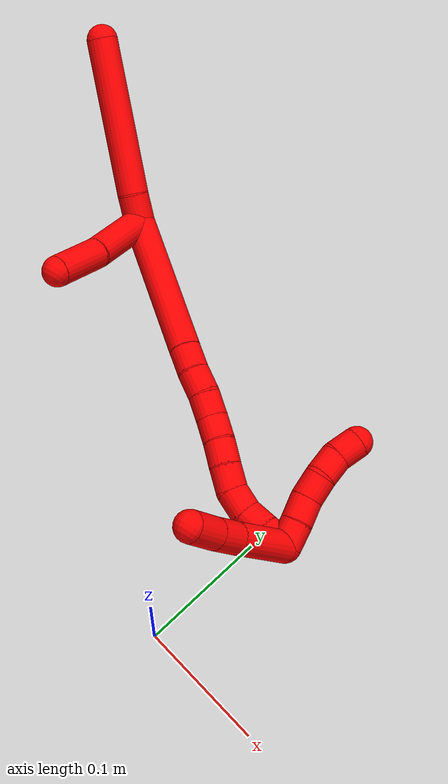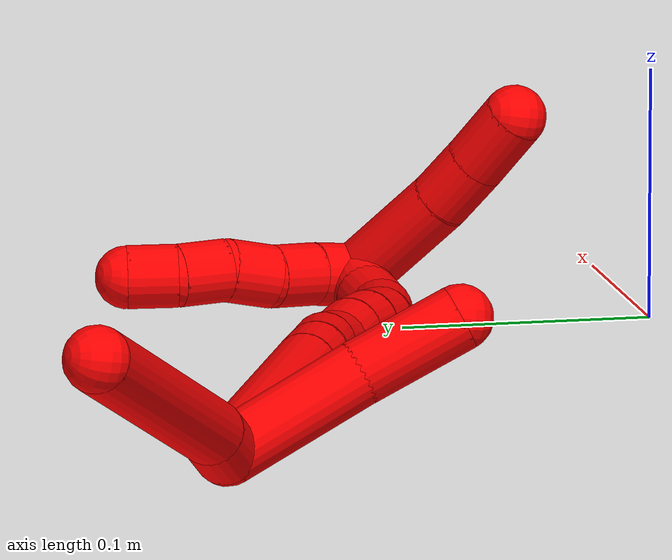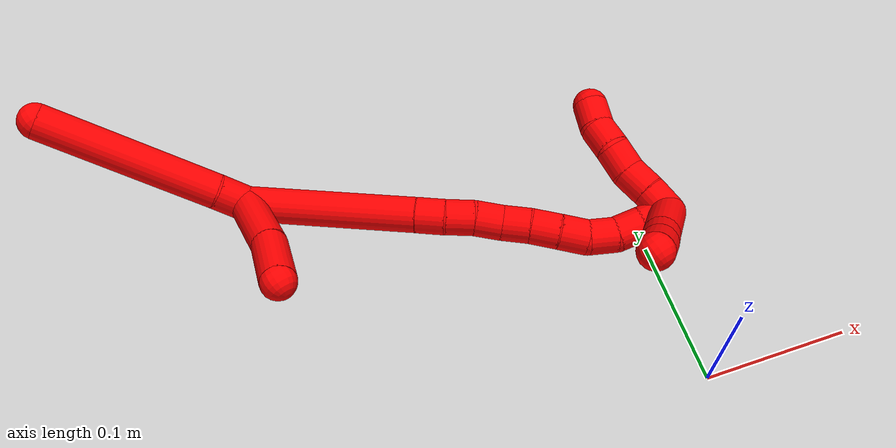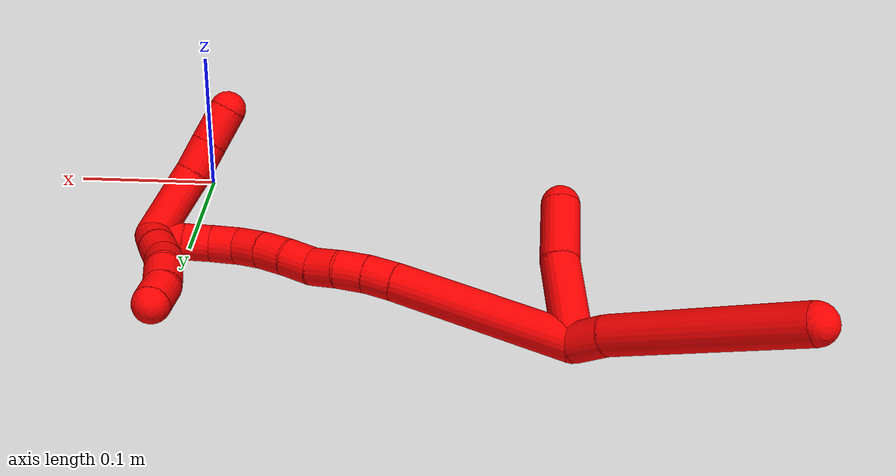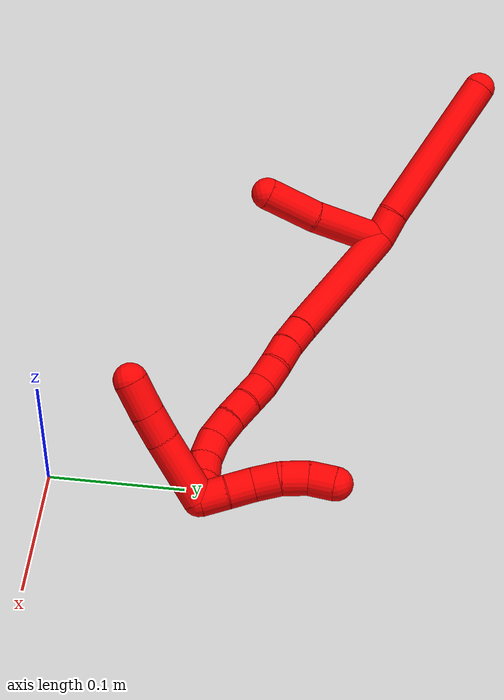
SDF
<sdf version="1.7">
 <world name="default">
  <model name="2">
   <static>0</static>
   <link name="2">
    <collision name="collision-cylinder-e_1_2_8">
     <pose>-0.007797 -0.003932 0.007764 0.468799 -0.730536 -0.182135</pose>
     <geometry><cylinder><radius>0.0125</radius><length>0.023371</length></cylinder></geometry>
     <surface>
      <friction><ode><mu>1.16</mu><mu2>1.16</mu2><slip1>0</slip1><slip2>0</slip2></ode></friction>
      <contact><ode><kp>1e+06</kp><kd>1</kd><max_vel>0</max_vel><min_depth>0.001</min_depth></ode></contact>
     </surface>
    </collision>
    <visual name="visual-cylinder-e_1_2_8">
     <pose>-0.007797 -0.003932 0.007764 0.468799 -0.730536 -0.182135</pose>
     <geometry><cylinder><radius>0.0125</radius><length>0.023371</length></cylinder></geometry>
     <material><ambient>1 0 0 1</ambient></material>
    </visual>
    <collision name="collision-cylinder-e_2_8_6">
     <pose>-0.057533 -0.021235 0.061039 0.285748 -0.723996 -0.108843</pose>
     <geometry><cylinder><radius>0.0125</radius><length>0.126629</length></cylinder></geometry>
     <surface>
      <friction><ode><mu>1.16</mu><mu2>1.16</mu2><slip1>0</slip1><slip2>0</slip2></ode></friction>
      <contact><ode><kp>1e+06</kp><kd>1</kd><max_vel>0</max_vel><min_depth>0.001</min_depth></ode></contact>
     </surface>
    </collision>
    <visual name="visual-cylinder-e_2_8_6">
     <pose>-0.057533 -0.021235 0.061039 0.285748 -0.723996 -0.108843</pose>
     <geometry><cylinder><radius>0.0125</radius><length>0.126629</length></cylinder></geometry>
     <material><ambient>1 0 0 1</ambient></material>
    </visual>
    <collision name="collision-cylinder-e_1_2_9">
     <pose>-0.005458 -0.016718 -0.022731 2.50747 -0.191059 -0.568244</pose>
     <geometry><cylinder><radius>0.0125</radius><length>0.057479</length></cylinder></geometry>
     <surface>
      <friction><ode><mu>1.16</mu><mu2>1.16</mu2><slip1>0</slip1><slip2>0</slip2></ode></friction>
      <contact><ode><kp>1e+06</kp><kd>1</kd><max_vel>0</max_vel><min_depth>0.001</min_depth></ode></contact>
     </surface>
    </collision>
    <visual name="visual-cylinder-e_1_2_9">
     <pose>-0.005458 -0.016718 -0.022731 2.50747 -0.191059 -0.568244</pose>
     <geometry><cylinder><radius>0.0125</radius><length>0.057479</length></cylinder></geometry>
     <material><ambient>1 0 0 1</ambient></material>
    </visual>
    <collision name="collision-cylinder-e_2_9_5">
     <pose>-0.017991 -0.045475 -0.061493 2.49741 -0.339293 -0.948457</pose>
     <geometry><cylinder><radius>0.0125</radius><length>0.042521</length></cylinder></geometry>
     <surface>
      <friction><ode><mu>1.16</mu><mu2>1.16</mu2><slip1>0</slip1><slip2>0</slip2></ode></friction>
      <contact><ode><kp>1e+06</kp><kd>1</kd><max_vel>0</max_vel><min_depth>0.001</min_depth></ode></contact>
     </surface>
    </collision>
    <visual name="visual-cylinder-e_2_9_5">
     <pose>-0.017991 -0.045475 -0.061493 2.49741 -0.339293 -0.948457</pose>
     <geometry><cylinder><radius>0.0125</radius><length>0.042521</length></cylinder></geometry>
     <material><ambient>1 0 0 1</ambient></material>
    </visual>
    <collision name="collision-cylinder-e_1_2_10">
     <pose>0.044147 -0.015336 -0.037471 2.7531 0.828598 2.30029</pose>
     <geometry><cylinder><radius>0.0125</radius><length>0.119803</length></cylinder></geometry>
     <surface>
      <friction><ode><mu>1.16</mu><mu2>1.16</mu2><slip1>0</slip1><slip2>0</slip2></ode></friction>
      <contact><ode><kp>1e+06</kp><kd>1</kd><max_vel>0</max_vel><min_depth>0.001</min_depth></ode></contact>
     </surface>
    </collision>
    <visual name="visual-cylinder-e_1_2_10">
     <pose>0.044147 -0.015336 -0.037471 2.7531 0.828598 2.30029</pose>
     <geometry><cylinder><radius>0.0125</radius><length>0.119803</length></cylinder></geometry>
     <material><ambient>1 0 0 1</ambient></material>
    </visual>
    <collision name="collision-cylinder-e_2_10_11">
     <pose>0.095876 -0.032816 -0.081218 2.8125 0.852162 2.44017</pose>
     <geometry><cylinder><radius>0.0125</radius><length>0.020148</length></cylinder></geometry>
     <surface>
      <friction><ode><mu>1.16</mu><mu2>1.16</mu2><slip1>0</slip1><slip2>0</slip2></ode></friction>
      <contact><ode><kp>1e+06</kp><kd>1</kd><max_vel>0</max_vel><min_depth>0.001</min_depth></ode></contact>
     </surface>
    </collision>
    <visual name="visual-cylinder-e_2_10_11">
     <pose>0.095876 -0.032816 -0.081218 2.8125 0.852162 2.44017</pose>
     <geometry><cylinder><radius>0.0125</radius><length>0.020148</length></cylinder></geometry>
     <material><ambient>1 0 0 1</ambient></material>
    </visual>
    <collision name="collision-cylinder-e_3_11_12">
     <pose>0.111609 -0.036406 -0.093144 2.89096 0.94975 2.66099</pose>
     <geometry><cylinder><radius>0.0125</radius><length>0.020045</length></cylinder></geometry>
     <surface>
      <friction><ode><mu>1.16</mu><mu2>1.16</mu2><slip1>0</slip1><slip2>0</slip2></ode></friction>
      <contact><ode><kp>1e+06</kp><kd>1</kd><max_vel>0</max_vel><min_depth>0.001</min_depth></ode></contact>
     </surface>
    </collision>
    <visual name="visual-cylinder-e_3_11_12">
     <pose>0.111609 -0.036406 -0.093144 2.89096 0.94975 2.66099</pose>
     <geometry><cylinder><radius>0.0125</radius><length>0.020045</length></cylinder></geometry>
     <material><ambient>1 0 0 1</ambient></material>
    </visual>
    <collision name="collision-cylinder-e_4_12_13">
     <pose>0.127353 -0.038092 -0.1053 3.10485 0.862011 3.06173</pose>
     <geometry><cylinder><radius>0.0125</radius><length>0.020003</length></cylinder></geometry>
     <surface>
      <friction><ode><mu>1.16</mu><mu2>1.16</mu2><slip1>0</slip1><slip2>0</slip2></ode></friction>
      <contact><ode><kp>1e+06</kp><kd>1</kd><max_vel>0</max_vel><min_depth>0.001</min_depth></ode></contact>
     </surface>
    </collision>
    <visual name="visual-cylinder-e_4_12_13">
     <pose>0.127353 -0.038092 -0.1053 3.10485 0.862011 3.06173</pose>
     <geometry><cylinder><radius>0.0125</radius><length>0.020003</length></cylinder></geometry>
     <material><ambient>1 0 0 1</ambient></material>
    </visual>
    <collision name="collision-cylinder-e_5_13_14">
     <pose>0.142057 -0.040776 -0.118397 2.78633 0.791174 2.32957</pose>
     <geometry><cylinder><radius>0.0125</radius><length>0.020001</length></cylinder></geometry>
     <surface>
      <friction><ode><mu>1.16</mu><mu2>1.16</mu2><slip1>0</slip1><slip2>0</slip2></ode></friction>
      <contact><ode><kp>1e+06</kp><kd>1</kd><max_vel>0</max_vel><min_depth>0.001</min_depth></ode></contact>
     </surface>
    </collision>
    <visual name="visual-cylinder-e_5_13_14">
     <pose>0.142057 -0.040776 -0.118397 2.78633 0.791174 2.32957</pose>
     <geometry><cylinder><radius>0.0125</radius><length>0.020001</length></cylinder></geometry>
     <material><ambient>1 0 0 1</ambient></material>
    </visual>
    <collision name="collision-cylinder-e_6_14_15">
     <pose>0.156084 -0.044707 -0.132058 2.93458 0.763501 2.63517</pose>
     <geometry><cylinder><radius>0.0125</radius><length>0.020001</length></cylinder></geometry>
     <surface>
      <friction><ode><mu>1.16</mu><mu2>1.16</mu2><slip1>0</slip1><slip2>0</slip2></ode></friction>
      <contact><ode><kp>1e+06</kp><kd>1</kd><max_vel>0</max_vel><min_depth>0.001</min_depth></ode></contact>
     </surface>
    </collision>
    <visual name="visual-cylinder-e_6_14_15">
     <pose>0.156084 -0.044707 -0.132058 2.93458 0.763501 2.63517</pose>
     <geometry><cylinder><radius>0.0125</radius><length>0.020001</length></cylinder></geometry>
     <material><ambient>1 0 0 1</ambient></material>
    </visual>
    <collision name="collision-cylinder-e_7_15_16">
     <pose>0.170193 -0.046844 -0.146044 3.04748 0.802901 2.92064</pose>
     <geometry><cylinder><radius>0.0125</radius><length>0.02</length></cylinder></geometry>
     <surface>
      <friction><ode><mu>1.16</mu><mu2>1.16</mu2><slip1>0</slip1><slip2>0</slip2></ode></friction>
      <contact><ode><kp>1e+06</kp><kd>1</kd><max_vel>0</max_vel><min_depth>0.001</min_depth></ode></contact>
     </surface>
    </collision>
    <visual name="visual-cylinder-e_7_15_16">
     <pose>0.170193 -0.046844 -0.146044 3.04748 0.802901 2.92064</pose>
     <geometry><cylinder><radius>0.0125</radius><length>0.02</length></cylinder></geometry>
     <material><ambient>1 0 0 1</ambient></material>
    </visual>
    <collision name="collision-cylinder-e_8_16_17">
     <pose>0.186227 -0.048832 -0.157438 2.85196 1.08456 2.66664</pose>
     <geometry><cylinder><radius>0.0125</radius><length>0.02</length></cylinder></geometry>
     <surface>
      <friction><ode><mu>1.16</mu><mu2>1.16</mu2><slip1>0</slip1><slip2>0</slip2></ode></friction>
      <contact><ode><kp>1e+06</kp><kd>1</kd><max_vel>0</max_vel><min_depth>0.001</min_depth></ode></contact>
     </surface>
    </collision>
    <visual name="visual-cylinder-e_8_16_17">
     <pose>0.186227 -0.048832 -0.157438 2.85196 1.08456 2.66664</pose>
     <geometry><cylinder><radius>0.0125</radius><length>0.02</length></cylinder></geometry>
     <material><ambient>1 0 0 1</ambient></material>
    </visual>
    <collision name="collision-cylinder-e_9_17_18">
     <pose>0.204636 -0.052418 -0.163758 2.25651 1.27559 2.00379</pose>
     <geometry><cylinder><radius>0.0125</radius><length>0.02</length></cylinder></geometry>
     <surface>
      <friction><ode><mu>1.16</mu><mu2>1.16</mu2><slip1>0</slip1><slip2>0</slip2></ode></friction>
      <contact><ode><kp>1e+06</kp><kd>1</kd><max_vel>0</max_vel><min_depth>0.001</min_depth></ode></contact>
     </surface>
    </collision>
    <visual name="visual-cylinder-e_9_17_18">
     <pose>0.204636 -0.052418 -0.163758 2.25651 1.27559 2.00379</pose>
     <geometry><cylinder><radius>0.0125</radius><length>0.02</length></cylinder></geometry>
     <material><ambient>1 0 0 1</ambient></material>
    </visual>
    <collision name="collision-cylinder-e_10_18_1">
     <pose>0.223373 -0.058212 -0.167438 2.04928 1.16028 1.64603</pose>
     <geometry><cylinder><radius>0.0125</radius><length>0.02</length></cylinder></geometry>
     <surface>
      <friction><ode><mu>1.16</mu><mu2>1.16</mu2><slip1>0</slip1><slip2>0</slip2></ode></friction>
      <contact><ode><kp>1e+06</kp><kd>1</kd><max_vel>0</max_vel><min_depth>0.001</min_depth></ode></contact>
     </surface>
    </collision>
    <visual name="visual-cylinder-e_10_18_1">
     <pose>0.223373 -0.058212 -0.167438 2.04928 1.16028 1.64603</pose>
     <geometry><cylinder><radius>0.0125</radius><length>0.02</length></cylinder></geometry>
     <material><ambient>1 0 0 1</ambient></material>
    </visual>
    <collision name="collision-cylinder-e_1_1_19">
     <pose>0.215065 -0.07832 -0.17704 2.00911 -0.762536 -1.12529</pose>
     <geometry><cylinder><radius>0.0125</radius><length>0.050601</length></cylinder></geometry>
     <surface>
      <friction><ode><mu>1.16</mu><mu2>1.16</mu2><slip1>0</slip1><slip2>0</slip2></ode></friction>
      <contact><ode><kp>1e+06</kp><kd>1</kd><max_vel>0</max_vel><min_depth>0.001</min_depth></ode></contact>
     </surface>
    </collision>
    <visual name="visual-cylinder-e_1_1_19">
     <pose>0.215065 -0.07832 -0.17704 2.00911 -0.762536 -1.12529</pose>
     <geometry><cylinder><radius>0.0125</radius><length>0.050601</length></cylinder></geometry>
     <material><ambient>1 0 0 1</ambient></material>
    </visual>
    <collision name="collision-cylinder-e_2_19_20">
     <pose>0.1903 -0.103089 -0.187822 1.92322 -0.695063 -0.957741</pose>
     <geometry><cylinder><radius>0.0125</radius><length>0.022763</length></cylinder></geometry>
     <surface>
      <friction><ode><mu>1.16</mu><mu2>1.16</mu2><slip1>0</slip1><slip2>0</slip2></ode></friction>
      <contact><ode><kp>1e+06</kp><kd>1</kd><max_vel>0</max_vel><min_depth>0.001</min_depth></ode></contact>
     </surface>
    </collision>
    <visual name="visual-cylinder-e_2_19_20">
     <pose>0.1903 -0.103089 -0.187822 1.92322 -0.695063 -0.957741</pose>
     <geometry><cylinder><radius>0.0125</radius><length>0.022763</length></cylinder></geometry>
     <material><ambient>1 0 0 1</ambient></material>
    </visual>
    <collision name="collision-cylinder-e_3_20_4">
     <pose>0.174362 -0.120992 -0.193753 1.86271 -0.70682 -0.920958</pose>
     <geometry><cylinder><radius>0.0125</radius><length>0.026636</length></cylinder></geometry>
     <surface>
      <friction><ode><mu>1.16</mu><mu2>1.16</mu2><slip1>0</slip1><slip2>0</slip2></ode></friction>
      <contact><ode><kp>1e+06</kp><kd>1</kd><max_vel>0</max_vel><min_depth>0.001</min_depth></ode></contact>
     </surface>
    </collision>
    <visual name="visual-cylinder-e_3_20_4">
     <pose>0.174362 -0.120992 -0.193753 1.86271 -0.70682 -0.920958</pose>
     <geometry><cylinder><radius>0.0125</radius><length>0.026636</length></cylinder></geometry>
     <material><ambient>1 0 0 1</ambient></material>
    </visual>
    <collision name="collision-cylinder-e_1_1_21">
     <pose>0.231707 -0.061285 -0.159322 -0.047192 -0.083606 0.001974</pose>
     <geometry><cylinder><radius>0.0125</radius><length>0.02</length></cylinder></geometry>
     <surface>
      <friction><ode><mu>1.16</mu><mu2>1.16</mu2><slip1>0</slip1><slip2>0</slip2></ode></friction>
      <contact><ode><kp>1e+06</kp><kd>1</kd><max_vel>0</max_vel><min_depth>0.001</min_depth></ode></contact>
     </surface>
    </collision>
    <visual name="visual-cylinder-e_1_1_21">
     <pose>0.231707 -0.061285 -0.159322 -0.047192 -0.083606 0.001974</pose>
     <geometry><cylinder><radius>0.0125</radius><length>0.02</length></cylinder></geometry>
     <material><ambient>1 0 0 1</ambient></material>
    </visual>
    <collision name="collision-cylinder-e_2_21_22">
     <pose>0.229574 -0.05963 -0.139523 -0.119781 -0.130092 0.007812</pose>
     <geometry><cylinder><radius>0.0125</radius><length>0.02</length></cylinder></geometry>
     <surface>
      <friction><ode><mu>1.16</mu><mu2>1.16</mu2><slip1>0</slip1><slip2>0</slip2></ode></friction>
      <contact><ode><kp>1e+06</kp><kd>1</kd><max_vel>0</max_vel><min_depth>0.001</min_depth></ode></contact>
     </surface>
    </collision>
    <visual name="visual-cylinder-e_2_21_22">
     <pose>0.229574 -0.05963 -0.139523 -0.119781 -0.130092 0.007812</pose>
     <geometry><cylinder><radius>0.0125</radius><length>0.02</length></cylinder></geometry>
     <material><ambient>1 0 0 1</ambient></material>
    </visual>
    <collision name="collision-cylinder-e_3_22_23">
     <pose>0.228615 -0.058955 -0.119698 0.051078 0.033771 0.000863</pose>
     <geometry><cylinder><radius>0.0125</radius><length>0.02</length></cylinder></geometry>
     <surface>
      <friction><ode><mu>1.16</mu><mu2>1.16</mu2><slip1>0</slip1><slip2>0</slip2></ode></friction>
      <contact><ode><kp>1e+06</kp><kd>1</kd><max_vel>0</max_vel><min_depth>0.001</min_depth></ode></contact>
     </surface>
    </collision>
    <visual name="visual-cylinder-e_3_22_23">
     <pose>0.228615 -0.058955 -0.119698 0.051078 0.033771 0.000863</pose>
     <geometry><cylinder><radius>0.0125</radius><length>0.02</length></cylinder></geometry>
     <material><ambient>1 0 0 1</ambient></material>
    </visual>
    <collision name="collision-cylinder-e_4_23_24">
     <pose>0.23019 -0.057551 -0.09998 -0.194207 0.124056 -0.0121</pose>
     <geometry><cylinder><radius>0.0125</radius><length>0.02</length></cylinder></geometry>
     <surface>
      <friction><ode><mu>1.16</mu><mu2>1.16</mu2><slip1>0</slip1><slip2>0</slip2></ode></friction>
      <contact><ode><kp>1e+06</kp><kd>1</kd><max_vel>0</max_vel><min_depth>0.001</min_depth></ode></contact>
     </surface>
    </collision>
    <visual name="visual-cylinder-e_4_23_24">
     <pose>0.23019 -0.057551 -0.09998 -0.194207 0.124056 -0.0121</pose>
     <geometry><cylinder><radius>0.0125</radius><length>0.02</length></cylinder></geometry>
     <material><ambient>1 0 0 1</ambient></material>
    </visual>
    <collision name="collision-cylinder-e_5_24_3">
     <pose>0.235462 -0.054381 -0.08118 -0.13756 0.415356 -0.02903</pose>
     <geometry><cylinder><radius>0.0125</radius><length>0.02</length></cylinder></geometry>
     <surface>
      <friction><ode><mu>1.16</mu><mu2>1.16</mu2><slip1>0</slip1><slip2>0</slip2></ode></friction>
      <contact><ode><kp>1e+06</kp><kd>1</kd><max_vel>0</max_vel><min_depth>0.001</min_depth></ode></contact>
     </surface>
    </collision>
    <visual name="visual-cylinder-e_5_24_3">
     <pose>0.235462 -0.054381 -0.08118 -0.13756 0.415356 -0.02903</pose>
     <geometry><cylinder><radius>0.0125</radius><length>0.02</length></cylinder></geometry>
     <material><ambient>1 0 0 1</ambient></material>
    </visual>
    <collision name="collision-sphere-3">
     <pose>0.239497 -0.053126 -0.072117 0 -0 0</pose>
     <geometry><sphere><radius>0.0125</radius></sphere></geometry>
     <surface>
      <friction><ode><mu>1.16</mu><mu2>1.16</mu2><slip1>0</slip1><slip2>0</slip2></ode></friction>
      <contact><ode><kp>1e+06</kp><kd>1</kd><max_vel>0</max_vel><min_depth>0.001</min_depth></ode></contact>
     </surface>
    </collision>
    <visual name="visual-sphere-3">
     <pose>0.239497 -0.053126 -0.072117 0 -0 0</pose>
     <geometry><sphere><radius>0.0125</radius></sphere></geometry>
     <material><ambient>1 0 0 1</ambient></material>
    </visual>
    <collision name="collision-sphere-24">
     <pose>0.231427 -0.055636 -0.090243 0 -0 0</pose>
     <geometry><sphere><radius>0.0125</radius></sphere></geometry>
     <surface>
      <friction><ode><mu>1.16</mu><mu2>1.16</mu2><slip1>0</slip1><slip2>0</slip2></ode></friction>
      <contact><ode><kp>1e+06</kp><kd>1</kd><max_vel>0</max_vel><min_depth>0.001</min_depth></ode></contact>
     </surface>
    </collision>
    <visual name="visual-sphere-24">
     <pose>0.231427 -0.055636 -0.090243 0 -0 0</pose>
     <geometry><sphere><radius>0.0125</radius></sphere></geometry>
     <material><ambient>1 0 0 1</ambient></material>
    </visual>
    <collision name="collision-sphere-23">
     <pose>0.228952 -0.059466 -0.109716 0 -0 0</pose>
     <geometry><sphere><radius>0.0125</radius></sphere></geometry>
     <surface>
      <friction><ode><mu>1.16</mu><mu2>1.16</mu2><slip1>0</slip1><slip2>0</slip2></ode></friction>
      <contact><ode><kp>1e+06</kp><kd>1</kd><max_vel>0</max_vel><min_depth>0.001</min_depth></ode></contact>
     </surface>
    </collision>
    <visual name="visual-sphere-23">
     <pose>0.228952 -0.059466 -0.109716 0 -0 0</pose>
     <geometry><sphere><radius>0.0125</radius></sphere></geometry>
     <material><ambient>1 0 0 1</ambient></material>
    </visual>
    <collision name="collision-sphere-22">
     <pose>0.228277 -0.058445 -0.129679 0 -0 0</pose>
     <geometry><sphere><radius>0.0125</radius></sphere></geometry>
     <surface>
      <friction><ode><mu>1.16</mu><mu2>1.16</mu2><slip1>0</slip1><slip2>0</slip2></ode></friction>
      <contact><ode><kp>1e+06</kp><kd>1</kd><max_vel>0</max_vel><min_depth>0.001</min_depth></ode></contact>
     </surface>
    </collision>
    <visual name="visual-sphere-22">
     <pose>0.228277 -0.058445 -0.129679 0 -0 0</pose>
     <geometry><sphere><radius>0.0125</radius></sphere></geometry>
     <material><ambient>1 0 0 1</ambient></material>
    </visual>
    <collision name="collision-sphere-21">
     <pose>0.230872 -0.060815 -0.149368 0 -0 0</pose>
     <geometry><sphere><radius>0.0125</radius></sphere></geometry>
     <surface>
      <friction><ode><mu>1.16</mu><mu2>1.16</mu2><slip1>0</slip1><slip2>0</slip2></ode></friction>
      <contact><ode><kp>1e+06</kp><kd>1</kd><max_vel>0</max_vel><min_depth>0.001</min_depth></ode></contact>
     </surface>
    </collision>
    <visual name="visual-sphere-21">
     <pose>0.230872 -0.060815 -0.149368 0 -0 0</pose>
     <geometry><sphere><radius>0.0125</radius></sphere></geometry>
     <material><ambient>1 0 0 1</ambient></material>
    </visual>
    <collision name="collision-sphere-4">
     <pose>0.165713 -0.130691 -0.196668 0 -0 0</pose>
     <geometry><sphere><radius>0.0125</radius></sphere></geometry>
     <surface>
      <friction><ode><mu>1.16</mu><mu2>1.16</mu2><slip1>0</slip1><slip2>0</slip2></ode></friction>
      <contact><ode><kp>1e+06</kp><kd>1</kd><max_vel>0</max_vel><min_depth>0.001</min_depth></ode></contact>
     </surface>
    </collision>
    <visual name="visual-sphere-4">
     <pose>0.165713 -0.130691 -0.196668 0 -0 0</pose>
     <geometry><sphere><radius>0.0125</radius></sphere></geometry>
     <material><ambient>1 0 0 1</ambient></material>
    </visual>
    <collision name="collision-sphere-20">
     <pose>0.183011 -0.111293 -0.190839 0 -0 0</pose>
     <geometry><sphere><radius>0.0125</radius></sphere></geometry>
     <surface>
      <friction><ode><mu>1.16</mu><mu2>1.16</mu2><slip1>0</slip1><slip2>0</slip2></ode></friction>
      <contact><ode><kp>1e+06</kp><kd>1</kd><max_vel>0</max_vel><min_depth>0.001</min_depth></ode></contact>
     </surface>
    </collision>
    <visual name="visual-sphere-20">
     <pose>0.183011 -0.111293 -0.190839 0 -0 0</pose>
     <geometry><sphere><radius>0.0125</radius></sphere></geometry>
     <material><ambient>1 0 0 1</ambient></material>
    </visual>
    <collision name="collision-sphere-10">
     <pose>0.088293 -0.030673 -0.074942 0 -0 0</pose>
     <geometry><sphere><radius>0.0125</radius></sphere></geometry>
     <surface>
      <friction><ode><mu>1.16</mu><mu2>1.16</mu2><slip1>0</slip1><slip2>0</slip2></ode></friction>
      <contact><ode><kp>1e+06</kp><kd>1</kd><max_vel>0</max_vel><min_depth>0.001</min_depth></ode></contact>
     </surface>
    </collision>
    <visual name="visual-sphere-10">
     <pose>0.088293 -0.030673 -0.074942 0 -0 0</pose>
     <geometry><sphere><radius>0.0125</radius></sphere></geometry>
     <material><ambient>1 0 0 1</ambient></material>
    </visual>
    <collision name="collision-sphere-5">
     <pose>-0.025067 -0.057515 -0.077523 0 -0 0</pose>
     <geometry><sphere><radius>0.0125</radius></sphere></geometry>
     <surface>
      <friction><ode><mu>1.16</mu><mu2>1.16</mu2><slip1>0</slip1><slip2>0</slip2></ode></friction>
      <contact><ode><kp>1e+06</kp><kd>1</kd><max_vel>0</max_vel><min_depth>0.001</min_depth></ode></contact>
     </surface>
    </collision>
    <visual name="visual-sphere-5">
     <pose>-0.025067 -0.057515 -0.077523 0 -0 0</pose>
     <geometry><sphere><radius>0.0125</radius></sphere></geometry>
     <material><ambient>1 0 0 1</ambient></material>
    </visual>
    <collision name="collision-sphere-6">
     <pose>-0.099472 -0.034605 0.106548 0 -0 0</pose>
     <geometry><sphere><radius>0.0125</radius></sphere></geometry>
     <surface>
      <friction><ode><mu>1.16</mu><mu2>1.16</mu2><slip1>0</slip1><slip2>0</slip2></ode></friction>
      <contact><ode><kp>1e+06</kp><kd>1</kd><max_vel>0</max_vel><min_depth>0.001</min_depth></ode></contact>
     </surface>
    </collision>
    <visual name="visual-sphere-6">
     <pose>-0.099472 -0.034605 0.106548 0 -0 0</pose>
     <geometry><sphere><radius>0.0125</radius></sphere></geometry>
     <material><ambient>1 0 0 1</ambient></material>
    </visual>
    <collision name="collision-sphere-9">
     <pose>-0.010915 -0.033435 -0.045462 0 -0 0</pose>
     <geometry><sphere><radius>0.0125</radius></sphere></geometry>
     <surface>
      <friction><ode><mu>1.16</mu><mu2>1.16</mu2><slip1>0</slip1><slip2>0</slip2></ode></friction>
      <contact><ode><kp>1e+06</kp><kd>1</kd><max_vel>0</max_vel><min_depth>0.001</min_depth></ode></contact>
     </surface>
    </collision>
    <visual name="visual-sphere-9">
     <pose>-0.010915 -0.033435 -0.045462 0 -0 0</pose>
     <geometry><sphere><radius>0.0125</radius></sphere></geometry>
     <material><ambient>1 0 0 1</ambient></material>
    </visual>
    <collision name="collision-sphere-2">
     <geometry><sphere><radius>0.0125</radius></sphere></geometry>
     <surface>
      <friction><ode><mu>1.16</mu><mu2>1.16</mu2><slip1>0</slip1><slip2>0</slip2></ode></friction>
      <contact><ode><kp>1e+06</kp><kd>1</kd><max_vel>0</max_vel><min_depth>0.001</min_depth></ode></contact>
     </surface>
    </collision>
    <visual name="visual-sphere-2">
     <geometry><sphere><radius>0.0125</radius></sphere></geometry>
     <material><ambient>1 0 0 1</ambient></material>
    </visual>
    <collision name="collision-sphere-19">
     <pose>0.197589 -0.094885 -0.184804 0 -0 0</pose>
     <geometry><sphere><radius>0.0125</radius></sphere></geometry>
     <surface>
      <friction><ode><mu>1.16</mu><mu2>1.16</mu2><slip1>0</slip1><slip2>0</slip2></ode></friction>
      <contact><ode><kp>1e+06</kp><kd>1</kd><max_vel>0</max_vel><min_depth>0.001</min_depth></ode></contact>
     </surface>
    </collision>
    <visual name="visual-sphere-19">
     <pose>0.197589 -0.094885 -0.184804 0 -0 0</pose>
     <geometry><sphere><radius>0.0125</radius></sphere></geometry>
     <material><ambient>1 0 0 1</ambient></material>
    </visual>
    <collision name="collision-sphere-8">
     <pose>-0.015595 -0.007865 0.015529 0 -0 0</pose>
     <geometry><sphere><radius>0.0125</radius></sphere></geometry>
     <surface>
      <friction><ode><mu>1.16</mu><mu2>1.16</mu2><slip1>0</slip1><slip2>0</slip2></ode></friction>
      <contact><ode><kp>1e+06</kp><kd>1</kd><max_vel>0</max_vel><min_depth>0.001</min_depth></ode></contact>
     </surface>
    </collision>
    <visual name="visual-sphere-8">
     <pose>-0.015595 -0.007865 0.015529 0 -0 0</pose>
     <geometry><sphere><radius>0.0125</radius></sphere></geometry>
     <material><ambient>1 0 0 1</ambient></material>
    </visual>
    <collision name="collision-sphere-11">
     <pose>0.103459 -0.03496 -0.087495 0 -0 0</pose>
     <geometry><sphere><radius>0.0125</radius></sphere></geometry>
     <surface>
      <friction><ode><mu>1.16</mu><mu2>1.16</mu2><slip1>0</slip1><slip2>0</slip2></ode></friction>
      <contact><ode><kp>1e+06</kp><kd>1</kd><max_vel>0</max_vel><min_depth>0.001</min_depth></ode></contact>
     </surface>
    </collision>
    <visual name="visual-sphere-11">
     <pose>0.103459 -0.03496 -0.087495 0 -0 0</pose>
     <geometry><sphere><radius>0.0125</radius></sphere></geometry>
     <material><ambient>1 0 0 1</ambient></material>
    </visual>
    <collision name="collision-sphere-12">
     <pose>0.11976 -0.037853 -0.098794 0 -0 0</pose>
     <geometry><sphere><radius>0.0125</radius></sphere></geometry>
     <surface>
      <friction><ode><mu>1.16</mu><mu2>1.16</mu2><slip1>0</slip1><slip2>0</slip2></ode></friction>
      <contact><ode><kp>1e+06</kp><kd>1</kd><max_vel>0</max_vel><min_depth>0.001</min_depth></ode></contact>
     </surface>
    </collision>
    <visual name="visual-sphere-12">
     <pose>0.11976 -0.037853 -0.098794 0 -0 0</pose>
     <geometry><sphere><radius>0.0125</radius></sphere></geometry>
     <material><ambient>1 0 0 1</ambient></material>
    </visual>
    <collision name="collision-sphere-13">
     <pose>0.134945 -0.038331 -0.111805 0 -0 0</pose>
     <geometry><sphere><radius>0.0125</radius></sphere></geometry>
     <surface>
      <friction><ode><mu>1.16</mu><mu2>1.16</mu2><slip1>0</slip1><slip2>0</slip2></ode></friction>
      <contact><ode><kp>1e+06</kp><kd>1</kd><max_vel>0</max_vel><min_depth>0.001</min_depth></ode></contact>
     </surface>
    </collision>
    <visual name="visual-sphere-13">
     <pose>0.134945 -0.038331 -0.111805 0 -0 0</pose>
     <geometry><sphere><radius>0.0125</radius></sphere></geometry>
     <material><ambient>1 0 0 1</ambient></material>
    </visual>
    <collision name="collision-sphere-14">
     <pose>0.149169 -0.043222 -0.124988 0 -0 0</pose>
     <geometry><sphere><radius>0.0125</radius></sphere></geometry>
     <surface>
      <friction><ode><mu>1.16</mu><mu2>1.16</mu2><slip1>0</slip1><slip2>0</slip2></ode></friction>
      <contact><ode><kp>1e+06</kp><kd>1</kd><max_vel>0</max_vel><min_depth>0.001</min_depth></ode></contact>
     </surface>
    </collision>
    <visual name="visual-sphere-14">
     <pose>0.149169 -0.043222 -0.124988 0 -0 0</pose>
     <geometry><sphere><radius>0.0125</radius></sphere></geometry>
     <material><ambient>1 0 0 1</ambient></material>
    </visual>
    <collision name="collision-sphere-15">
     <pose>0.162999 -0.046192 -0.139128 0 -0 0</pose>
     <geometry><sphere><radius>0.0125</radius></sphere></geometry>
     <surface>
      <friction><ode><mu>1.16</mu><mu2>1.16</mu2><slip1>0</slip1><slip2>0</slip2></ode></friction>
      <contact><ode><kp>1e+06</kp><kd>1</kd><max_vel>0</max_vel><min_depth>0.001</min_depth></ode></contact>
     </surface>
    </collision>
    <visual name="visual-sphere-15">
     <pose>0.162999 -0.046192 -0.139128 0 -0 0</pose>
     <geometry><sphere><radius>0.0125</radius></sphere></geometry>
     <material><ambient>1 0 0 1</ambient></material>
    </visual>
    <collision name="collision-sphere-16">
     <pose>0.177386 -0.047497 -0.152959 0 -0 0</pose>
     <geometry><sphere><radius>0.0125</radius></sphere></geometry>
     <surface>
      <friction><ode><mu>1.16</mu><mu2>1.16</mu2><slip1>0</slip1><slip2>0</slip2></ode></friction>
      <contact><ode><kp>1e+06</kp><kd>1</kd><max_vel>0</max_vel><min_depth>0.001</min_depth></ode></contact>
     </surface>
    </collision>
    <visual name="visual-sphere-16">
     <pose>0.177386 -0.047497 -0.152959 0 -0 0</pose>
     <geometry><sphere><radius>0.0125</radius></sphere></geometry>
     <material><ambient>1 0 0 1</ambient></material>
    </visual>
    <collision name="collision-sphere-17">
     <pose>0.195068 -0.050166 -0.161916 0 -0 0</pose>
     <geometry><sphere><radius>0.0125</radius></sphere></geometry>
     <surface>
      <friction><ode><mu>1.16</mu><mu2>1.16</mu2><slip1>0</slip1><slip2>0</slip2></ode></friction>
      <contact><ode><kp>1e+06</kp><kd>1</kd><max_vel>0</max_vel><min_depth>0.001</min_depth></ode></contact>
     </surface>
    </collision>
    <visual name="visual-sphere-17">
     <pose>0.195068 -0.050166 -0.161916 0 -0 0</pose>
     <geometry><sphere><radius>0.0125</radius></sphere></geometry>
     <material><ambient>1 0 0 1</ambient></material>
    </visual>
    <collision name="collision-sphere-18">
     <pose>0.214203 -0.05467 -0.165601 0 -0 0</pose>
     <geometry><sphere><radius>0.0125</radius></sphere></geometry>
     <surface>
      <friction><ode><mu>1.16</mu><mu2>1.16</mu2><slip1>0</slip1><slip2>0</slip2></ode></friction>
      <contact><ode><kp>1e+06</kp><kd>1</kd><max_vel>0</max_vel><min_depth>0.001</min_depth></ode></contact>
     </surface>
    </collision>
    <visual name="visual-sphere-18">
     <pose>0.214203 -0.05467 -0.165601 0 -0 0</pose>
     <geometry><sphere><radius>0.0125</radius></sphere></geometry>
     <material><ambient>1 0 0 1</ambient></material>
    </visual>
    <collision name="collision-sphere-1">
     <pose>0.232542 -0.061755 -0.169276 0 -0 0</pose>
     <geometry><sphere><radius>0.0125</radius></sphere></geometry>
     <surface>
      <friction><ode><mu>1.16</mu><mu2>1.16</mu2><slip1>0</slip1><slip2>0</slip2></ode></friction>
      <contact><ode><kp>1e+06</kp><kd>1</kd><max_vel>0</max_vel><min_depth>0.001</min_depth></ode></contact>
     </surface>
    </collision>
    <visual name="visual-sphere-1">
     <pose>0.232542 -0.061755 -0.169276 0 -0 0</pose>
     <geometry><sphere><radius>0.0125</radius></sphere></geometry>
     <material><ambient>1 0 0 1</ambient></material>
    </visual>
    <inertial>
     <pose>0.090773 -0.04116 -0.072268 0 -0 0</pose>
     <mass>0.75</mass>
     <inertia>
      <ixx>0.000132</ixx>
      <ixy>0</ixy>
      <ixz>0</ixz>
      <iyy>0.000326</iyy>
      <iyz>0</iyz>
      <izz>0.000113</izz>
     </inertia>
    </inertial>
   </link>
   <pose>-0.254418 0.219322 0.013338 -1.39783 0.11646 0.282761</pose>
  </model>
 </world>
</sdf>
